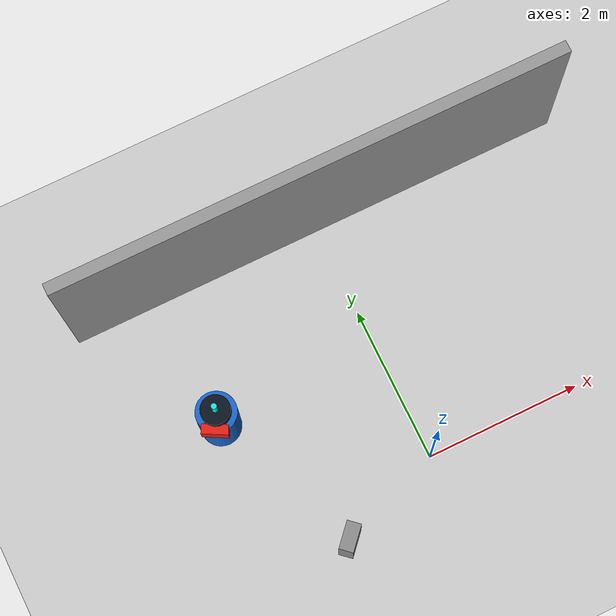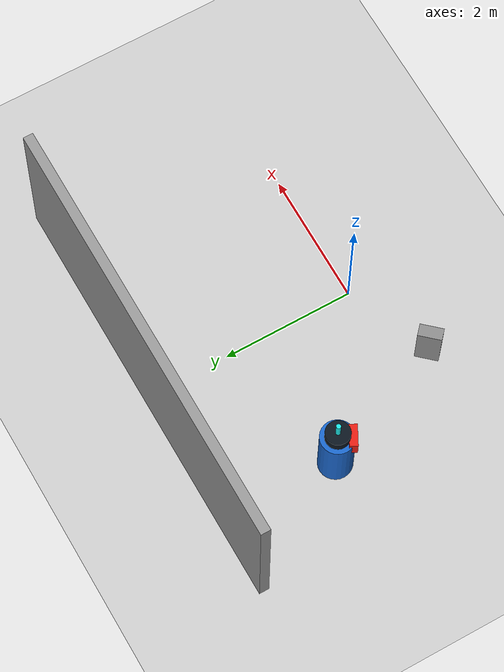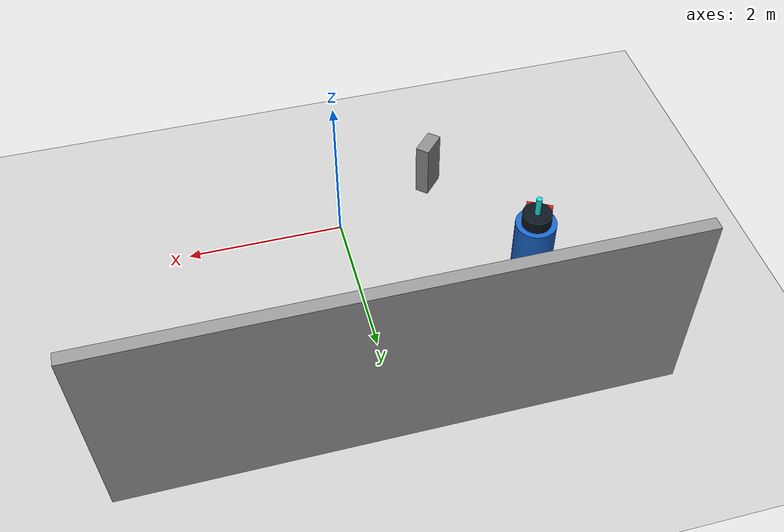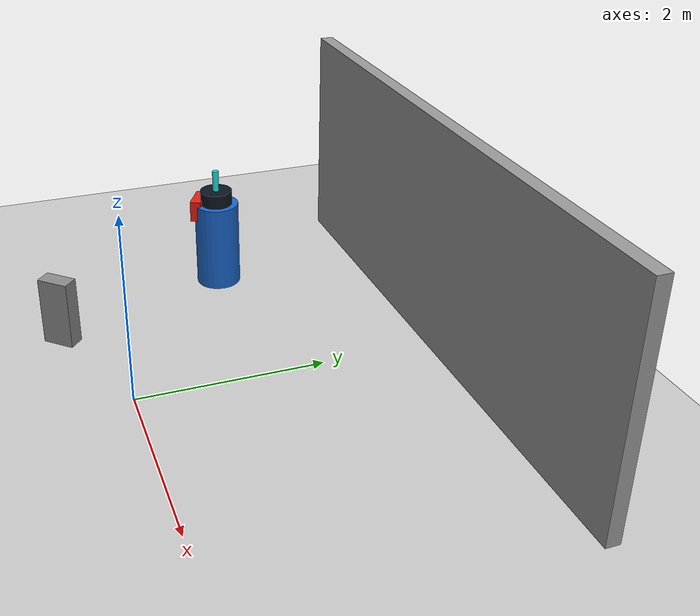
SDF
<sdf version="1.7">
 <world name="default">
  <plugin name="socnav_plugin" filename="libSocNavPlugin.so">
   <robot_name>robot</robot_name>
   <trajectory_file>/home/hunav_gz_classic_ws/SocNav3_trajectories/src6/000003916.json</trajectory_file>
   <human_slots>0</human_slots>
   <goal_angle_mesh>
    <angle_threshold>1.9468624749</angle_threshold>
    <uri>/home/hunav_gz_classic_ws/src/socnav_gazebo_reproducer/meshes/000003916_goal_angle_00.stl</uri>
   </goal_angle_mesh>
  </plugin>
  <light name="sun" type="directional">
   <pose>0 0 10 0 -0 0</pose>
   <diffuse>0.8 0.8 0.8 1</diffuse>
   <specular>0.2 0.2 0.2 1</specular>
   <attenuation>
    <range>1000</range>
    <constant>0.9</constant>
    <linear>0.01</linear>
    <quadratic>0.001</quadratic>
   </attenuation>
   <direction>-0.5 0.1 -0.9</direction>
   <spot><inner_angle>0</inner_angle><outer_angle>0</outer_angle><falloff>0</falloff></spot>
  </light>
  <model name="ground_plane">
   <static>1</static>
   <link name="link">
    <collision name="collision">
     <geometry><plane><normal>0 0 1</normal><size>100 100</size></plane></geometry>
     <surface><friction><ode><mu>100</mu><mu2>50</mu2></ode></friction></surface>
    </collision>
    <visual name="visual">
     <cast_shadows>0</cast_shadows>
     <geometry><plane><normal>0 0 1</normal><size>100 100</size></plane></geometry>
     <material>
      <script><uri>file://media/materials/scripts/kitchen.material</uri><name>Kitchen/CounterTop_H</name></script>
     </material>
    </visual>
   </link>
  </model>
  <gravity>0 0 -9.8</gravity>
  <magnetic_field>6e-06 2.3e-05 -4.2e-05</magnetic_field>
  <atmosphere type="adiabatic"/>
  <physics type="ode">
   <max_step_size>0.001</max_step_size>
   <real_time_factor>1</real_time_factor>
   <real_time_update_rate>1000</real_time_update_rate>
  </physics>
  <scene><ambient>0.4 0.4 0.4 1</ambient><background>0.7 0.7 0.7 1</background><shadows>1</shadows></scene>
  <audio><device>default</device></audio>
  <spherical_coordinates>
   <surface_model>EARTH_WGS84</surface_model>
   <latitude_deg>0</latitude_deg>
   <longitude_deg>0</longitude_deg>
   <elevation>0</elevation>
   <heading_deg>0</heading_deg>
  </spherical_coordinates>
  <model name="robot">
   <pose>-2.1194271794282575 1.462126034522105 0.5 0 0 -2.066783805995559</pose>
   <link name="link">
    <collision name="collision">
     <geometry><cylinder><radius>0.2526102818898059</radius><length>1.0</length></cylinder></geometry>
    </collision>
    <visual name="visual">
     <geometry><cylinder><radius>0.2526102818898059</radius><length>1.0</length></cylinder></geometry>
     <material><ambient>0.1 0.4 0.8 1</ambient><diffuse>0.1 0.4 0.8 1</diffuse></material>
    </visual>
    <visual name="robot_top">
     <pose>0 0 0.58 0 0 0</pose>
     <geometry><cylinder><radius>0.18187940296066024</radius><length>0.16</length></cylinder></geometry>
     <material><ambient>0.04 0.08 0.12 1</ambient><diffuse>0.04 0.08 0.12 1</diffuse></material>
    </visual>
    <visual name="robot_front">
     <pose>0.21219263678743694 0 0.44 0 0 0</pose>
     <geometry><box><size>0.12125293530710682 0.32334116081895153 0.24</size></box></geometry>
     <material><ambient>0.9 0.12 0.08 1</ambient><diffuse>0.9 0.12 0.08 1</diffuse></material>
    </visual>
    <visual name="robot_sensor">
     <pose>0 0 0.78 0 0 0</pose>
     <geometry><cylinder><radius>0.03536543946457283</radius><length>0.24</length></cylinder></geometry>
     <material><ambient>0.1 0.9 0.9 1</ambient><diffuse>0.1 0.9 0.9 1</diffuse></material>
    </visual>
   </link>
  </model>
  <model name="static_object_0">
   <static>true</static>
   <pose>-1.335655987350173 -0.5057107103596302 0.375 0 0 0.8330757063445873</pose>
   <link name="link">
    <collision name="collision"><geometry><box><size>0.35 0.18 0.75</size></box></geometry></collision>
    <visual name="visual">
     <geometry><box><size>0.35 0.18 0.75</size></box></geometry>
     <material><ambient>0.55 0.55 0.55 1</ambient><diffuse>0.55 0.55 0.55 1</diffuse></material>
    </visual>
   </link>
  </model>
  <model name="simple_world_test">
   <link name="Wall_0">
    <collision name="Wall_0_Collision">
     <geometry><box><size>6.514695355229154 0.15 2.5</size></box></geometry>
     <pose>0 0 1.25 0 -0 0</pose>
    </collision>
    <visual name="Wall_0_Visual">
     <pose>0 0 1.25 0 -0 0</pose>
     <geometry><box><size>6.514695355229154 0.15 2.5</size></box></geometry>
     <material>
      <script><uri>file://media/materials/scripts/gazebo.material</uri><name>Gazebo/Grey</name></script>
      <ambient>1 1 1 1</ambient>
     </material>
     <meta><layer>0</layer></meta>
    </visual>
    <pose>0.0 3.2473476776145773 0 0 -0 0.0</pose>
   </link>
   <static>1</static>
  </model>
 </world>
</sdf>
